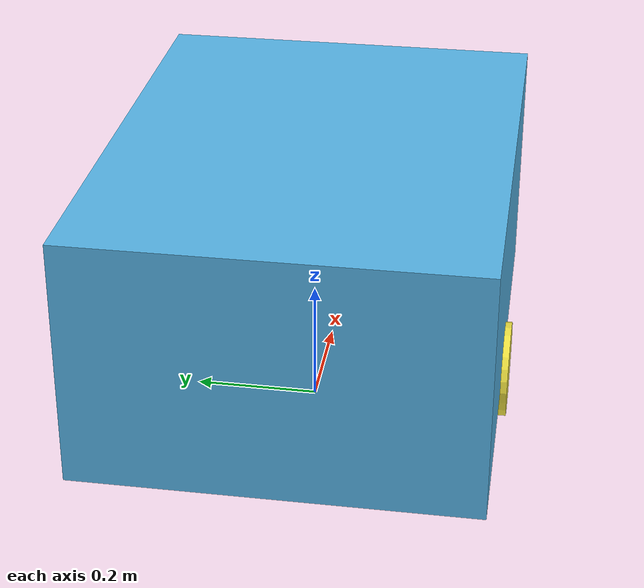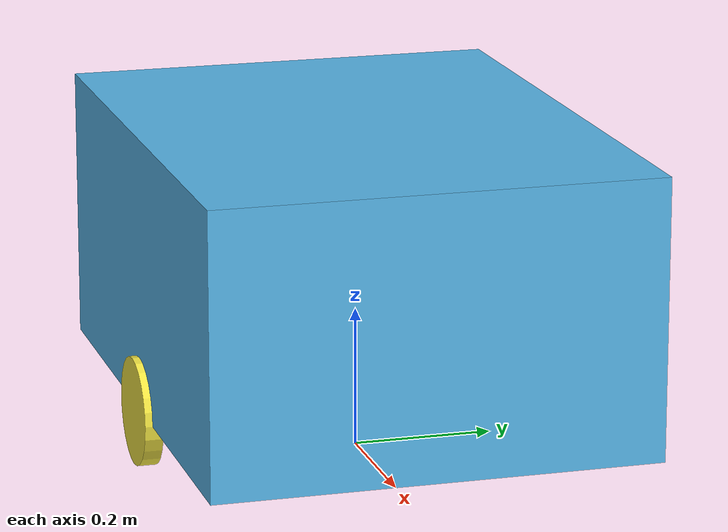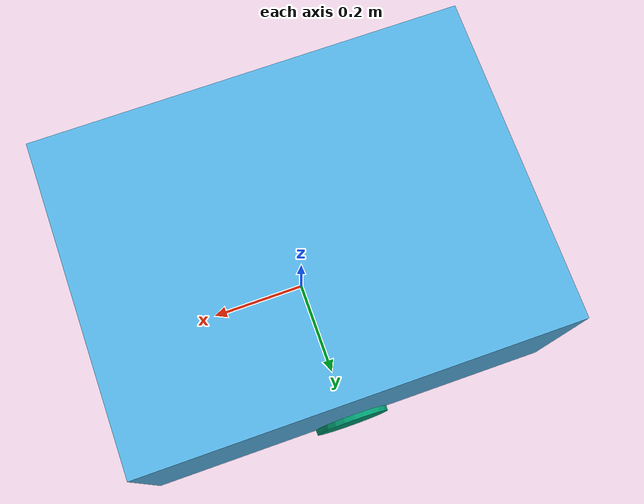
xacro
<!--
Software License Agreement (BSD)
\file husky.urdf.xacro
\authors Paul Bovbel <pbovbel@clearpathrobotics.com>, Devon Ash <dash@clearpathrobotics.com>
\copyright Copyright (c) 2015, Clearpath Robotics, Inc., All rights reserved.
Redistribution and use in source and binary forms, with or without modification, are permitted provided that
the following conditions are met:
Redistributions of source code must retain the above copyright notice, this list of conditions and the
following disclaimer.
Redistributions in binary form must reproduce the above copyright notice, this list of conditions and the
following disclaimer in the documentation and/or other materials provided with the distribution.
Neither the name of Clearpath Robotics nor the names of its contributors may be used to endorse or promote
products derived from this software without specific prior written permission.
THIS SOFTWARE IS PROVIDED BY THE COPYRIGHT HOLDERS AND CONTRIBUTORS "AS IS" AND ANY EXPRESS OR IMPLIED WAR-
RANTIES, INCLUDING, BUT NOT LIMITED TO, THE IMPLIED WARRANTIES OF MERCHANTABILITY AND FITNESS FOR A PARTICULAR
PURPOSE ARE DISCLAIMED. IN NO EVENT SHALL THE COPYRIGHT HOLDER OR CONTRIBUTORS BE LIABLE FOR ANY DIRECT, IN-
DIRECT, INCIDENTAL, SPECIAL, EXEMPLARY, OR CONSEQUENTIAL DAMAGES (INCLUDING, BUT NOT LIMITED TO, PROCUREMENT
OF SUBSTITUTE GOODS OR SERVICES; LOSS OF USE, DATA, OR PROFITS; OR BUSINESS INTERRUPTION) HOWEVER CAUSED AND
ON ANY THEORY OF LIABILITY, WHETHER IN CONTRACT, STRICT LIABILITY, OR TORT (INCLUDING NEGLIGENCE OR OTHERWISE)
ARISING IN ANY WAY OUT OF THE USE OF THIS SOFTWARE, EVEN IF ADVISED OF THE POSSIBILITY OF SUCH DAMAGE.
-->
<?xml version="1.0"?>
<robot name="spark_mini"
    xmlns:xacro="http://ros.org/wiki/xacro">
    <!-- Base link is the center of the robot's bottom plate -->
    <xacro:property name="spark_mini_width" value="0.625" />
    <xacro:property name="spark_mini_length" value="0.825" />
    <xacro:property name="spark_mini_height" value="0.393" />
    <xacro:property name="spark_mini_wheel_radius" value="0.077" />
    <xacro:property name="spark_mini_wheel_length" value="0.026" />
    <xacro:property name="spark_mini_wheel_distance" value="0.31" />
    <xacro:property name="lidar_height" value="0.0757" />

    <material name="blue">
        <color rgba="0 0 0.8 1"/>
    </material>

    <material name="white">
        <color rgba="1 1 1 1"/>
    </material>

    <link name="map"/>

    <link name="base_link">
        <inertial>
         <origin xyz="0 0 0" rpy="0 0 0"/>
         <mass value="1"/>
         <inertia ixx="100"  ixy="0"  ixz="0" iyy="100" iyz="0" izz="100" />
       </inertial>
        <visual>
            <origin xyz="0 0 0" rpy="0 0 0" />
            <geometry>
                <box size="${spark_mini_length} ${spark_mini_width} ${spark_mini_height}"/>
            </geometry>
        </visual>
        <collision>
            <origin xyz="0 0 0" rpy="0 0 0" />
            <geometry>
                <box size="${spark_mini_length} ${spark_mini_width} ${spark_mini_height}"/>
            </geometry>
        </collision>
    </link>

    <link name="left_wheel">
        <visual>
            <origin xyz="0 0 0" rpy="0 0 0" />
            <geometry>
                <cylinder length="${spark_mini_wheel_length}" radius="${spark_mini_wheel_radius}"/>
            </geometry>
        </visual>
        <collision>
            <origin xyz="0 0 0" rpy="0 0 0" />
            <geometry>
                <cylinder length="${spark_mini_wheel_length}" radius="${spark_mini_wheel_radius}"/>
            </geometry>
        </collision>
    </link>

    <link name="right_wheel">
        <visual>
            <origin xyz="0 0 0" rpy="0 0 0" />
            <geometry>
                <cylinder length="${spark_mini_wheel_length}" radius="${spark_mini_wheel_radius}"/>
            </geometry>
        </visual>
        <collision>
            <origin xyz="0 0 0" rpy="0 0 0" />
            <geometry>
                <cylinder length="${spark_mini_wheel_length}" radius="${spark_mini_wheel_radius}"/>
            </geometry>
        </collision>
    </link>

    <link name="velodyne">
        <visual>
            <origin xyz="0 0 0" rpy="0 0 0" />
            <geometry>
                <cylinder length="0.0717" radius="0.1033"/>
            </geometry>
            <material name="blue"/>
        </visual>

        <collision>
            <origin xyz="0 0 0" rpy="0 0 0" />
            <geometry>
                <cylinder length="0.0717" radius="0.1033"/>
            </geometry>
        </collision>

    </link>

    <link name="main_camera">
        <visual>
            <origin xyz="0 0 0" rpy="0 0 0" />
            <geometry>
                <box size="0.02 0.05 0.02"/>
            </geometry>
            <material name="white"/>
        </visual>

        <collision>
            <origin xyz="0 0 0" rpy="0 0 0" />
            <geometry>
                <box size="0.02 0.05 0.02"/>
            </geometry>
        </collision>

    </link>

    <joint name="fixed_base_joint" type="fixed">
        <origin xyz="0 0 ${spark_mini_wheel_radius + (spark_mini_height/2)}"></origin>
        <parent link="map"/>
        <child link="base_link"/>
    </joint>

    <joint name="base_to_left_wheel" type="fixed">
        <origin xyz="0 ${spark_mini_wheel_distance} ${-spark_mini_height/2}" rpy="1.57079 0 0" />
        <parent link="base_link"/>
        <child link="left_wheel"/>
    </joint>

    <joint name="base_to_right_wheel" type="fixed">
        <origin xyz="0 ${-spark_mini_wheel_distance} ${-spark_mini_height/2}" rpy="1.57079 0 0" />
        <parent link="base_link"/>
        <child link="right_wheel"/>
    </joint>

    <joint name="base_to_lidar" type="fixed">
        <origin xyz="0.0 0.0 0.0" rpy="0 0 0"></origin>
        <parent link="base_link"/>
        <child link="velodyne"/>
    </joint>

    <joint name="base_to_main_camera" type="fixed">
        <origin xyz="0.01715 -0.01550 ${0.106 - lidar_height/2}" rpy="0 0 0"></origin>+
        <parent link="base_link"/>
        <child link="main_camera"/>
    </joint>
</robot>
